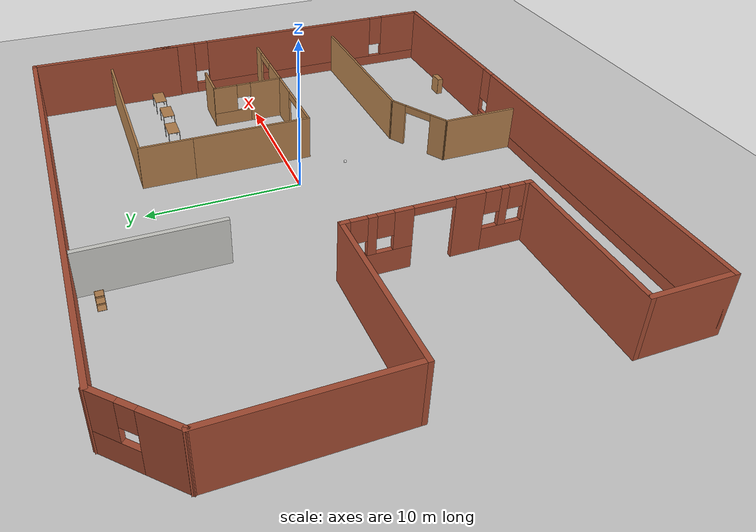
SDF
<sdf version="1.6">
 <world name="default">
  <plugin name="welcome_message" filename="libwelcome_message.so"/>
  <light name="sun" type="directional">
   <pose>0 0 10 0 -0 0</pose>
   <diffuse>0.8 0.8 0.8 1</diffuse>
   <specular>0.2 0.2 0.2 1</specular>
   <attenuation>
    <range>1000</range>
    <constant>0.9</constant>
    <linear>0.01</linear>
    <quadratic>0.001</quadratic>
   </attenuation>
   <direction>-0.5 0.1 -0.9</direction>
  </light>
  <model name="ground_plane">
   <static>1</static>
   <link name="link">
    <collision name="collision">
     <geometry><plane><normal>0 0 1</normal><size>100 100</size></plane></geometry>
     <surface>
      <contact><collide_bitmask>65535</collide_bitmask></contact>
      <friction><ode><mu>100</mu><mu2>50</mu2></ode></friction>
     </surface>
    </collision>
    <visual name="visual">
     <cast_shadows>0</cast_shadows>
     <geometry><plane><normal>0 0 1</normal><size>100 100</size></plane></geometry>
     <material>
      <script><uri>file://media/materials/scripts/gazebo.material</uri><name>Gazebo/Grey</name></script>
     </material>
    </visual>
   </link>
  </model>
  <gravity>0 0 -9.8</gravity>
  <magnetic_field>6e-06 2.3e-05 -4.2e-05</magnetic_field>
  <atmosphere type="adiabatic"/>
  <physics name="default_physics" default="0" type="ode">
   <max_step_size>0.001</max_step_size>
   <real_time_factor>1</real_time_factor>
   <real_time_update_rate>1000</real_time_update_rate>
  </physics>
  <scene><ambient>0.4 0.4 0.4 1</ambient><background>0.7 0.7 0.7 1</background><shadows>1</shadows></scene>
  <spherical_coordinates>
   <surface_model>EARTH_WGS84</surface_model>
   <latitude_deg>0</latitude_deg>
   <longitude_deg>0</longitude_deg>
   <elevation>0</elevation>
   <heading_deg>0</heading_deg>
  </spherical_coordinates>
  <model name="Building">
   <pose>-2.2862 -0.18474 0 0 -0 0</pose>
   <link name="Wall_12">
    <collision name="Wall_12_Collision">
     <geometry><box><size>10.4 0.3 4</size></box></geometry>
     <pose>0 0 2 0 -0 0</pose>
    </collision>
    <visual name="Wall_12_Visual">
     <pose>0 0 2 0 -0 0</pose>
     <geometry><box><size>10.4 0.3 4</size></box></geometry>
     <material>
      <script><uri>file://media/materials/scripts/gazebo.material</uri><name>Gazebo/Bricks</name></script>
      <ambient>0.333333 0 0 1</ambient>
     </material>
     <meta><layer>0</layer></meta>
    </visual>
    <pose>-12.3439 1.20443 0 0 -0 0</pose>
   </link>
   <link name="Wall_13">
    <pose>-7.29394 -4.47057 0 0 0 -1.5708</pose>
    <visual name="Wall_13_Visual_0">
     <pose>-5.51365 0 2 0 -0 0</pose>
     <geometry><box><size>0.62261 0.3 4</size></box></geometry>
     <material>
      <script><uri>file://media/materials/scripts/gazebo.material</uri><name>Gazebo/Bricks</name></script>
      <ambient>0.333333 0 0 1</ambient>
     </material>
     <meta><layer>0</layer></meta>
    </visual>
    <collision name="Wall_13_Collision_0">
     <geometry><box><size>0.62261 0.3 4</size></box></geometry>
     <pose>-5.51365 0 2 0 -0 0</pose>
    </collision>
    <visual name="Wall_13_Visual_1">
     <pose>1.88818 0 2 0 -0 0</pose>
     <geometry><box><size>1.83467 0.3 4</size></box></geometry>
     <material>
      <script><uri>file://media/materials/scripts/gazebo.material</uri><name>Gazebo/Bricks</name></script>
      <ambient>0.333333 0 0 1</ambient>
     </material>
     <meta><layer>0</layer></meta>
    </visual>
    <collision name="Wall_13_Collision_1">
     <geometry><box><size>1.83467 0.3 4</size></box></geometry>
     <pose>1.88818 0 2 0 -0 0</pose>
    </collision>
    <visual name="Wall_13_Visual_2">
     <pose>-3.36575 0 0.75 0 -0 0</pose>
     <geometry><box><size>3.6732 0.3 1.5</size></box></geometry>
     <material>
      <script><uri>file://media/materials/scripts/gazebo.material</uri><name>Gazebo/Bricks</name></script>
      <ambient>0.333333 0 0 1</ambient>
     </material>
     <meta><layer>0</layer></meta>
    </visual>
    <collision name="Wall_13_Collision_2">
     <geometry><box><size>3.6732 0.3 1.5</size></box></geometry>
     <pose>-3.36575 0 0.75 0 -0 0</pose>
    </collision>
    <visual name="Wall_13_Visual_3">
     <pose>4.31524 0 0.75 0 -0 0</pose>
     <geometry><box><size>3.01944 0.3 1.5</size></box></geometry>
     <material>
      <script><uri>file://media/materials/scripts/gazebo.material</uri><name>Gazebo/Bricks</name></script>
      <ambient>0.333333 0 0 1</ambient>
     </material>
     <meta><layer>0</layer></meta>
    </visual>
    <collision name="Wall_13_Collision_3">
     <geometry><box><size>3.01944 0.3 1.5</size></box></geometry>
     <pose>4.31524 0 0.75 0 -0 0</pose>
    </collision>
    <visual name="Wall_13_Visual_4">
     <pose>-3.93532 0 2.75 0 -0 0</pose>
     <geometry><box><size>0.534062 0.3 2.5</size></box></geometry>
     <material>
      <script><uri>file://media/materials/scripts/gazebo.material</uri><name>Gazebo/Bricks</name></script>
      <ambient>0.333333 0 0 1</ambient>
     </material>
     <meta><layer>0</layer></meta>
    </visual>
    <collision name="Wall_13_Collision_4">
     <geometry><box><size>0.534062 0.3 2.5</size></box></geometry>
     <pose>-3.93532 0 2.75 0 -0 0</pose>
    </collision>
    <visual name="Wall_13_Visual_5">
     <pose>-2.09872 0 2.75 0 -0 0</pose>
     <geometry><box><size>1.13914 0.3 2.5</size></box></geometry>
     <material>
      <script><uri>file://media/materials/scripts/gazebo.material</uri><name>Gazebo/Bricks</name></script>
      <ambient>0.333333 0 0 1</ambient>
     </material>
     <meta><layer>0</layer></meta>
    </visual>
    <collision name="Wall_13_Collision_5">
     <geometry><box><size>1.13914 0.3 2.5</size></box></geometry>
     <pose>-2.09872 0 2.75 0 -0 0</pose>
    </collision>
    <visual name="Wall_13_Visual_6">
     <pose>-2.09872 0 2.75 0 -0 0</pose>
     <geometry><box><size>1.13914 0.3 2.5</size></box></geometry>
     <material>
      <script><uri>file://media/materials/scripts/gazebo.material</uri><name>Gazebo/Bricks</name></script>
      <ambient>0.333333 0 0 1</ambient>
     </material>
     <meta><layer>0</layer></meta>
    </visual>
    <collision name="Wall_13_Collision_6">
     <geometry><box><size>1.13914 0.3 2.5</size></box></geometry>
     <pose>-2.09872 0 2.75 0 -0 0</pose>
    </collision>
    <visual name="Wall_13_Visual_7">
     <pose>4.05455 0 2.75 0 -0 0</pose>
     <geometry><box><size>0.49807 0.3 2.5</size></box></geometry>
     <material>
      <script><uri>file://media/materials/scripts/gazebo.material</uri><name>Gazebo/Bricks</name></script>
      <ambient>0.333333 0 0 1</ambient>
     </material>
     <meta><layer>0</layer></meta>
    </visual>
    <collision name="Wall_13_Collision_7">
     <geometry><box><size>0.49807 0.3 2.5</size></box></geometry>
     <pose>4.05455 0 2.75 0 -0 0</pose>
    </collision>
    <visual name="Wall_13_Visual_8">
     <pose>5.56427 0 2.75 0 -0 0</pose>
     <geometry><box><size>0.521372 0.3 2.5</size></box></geometry>
     <material>
      <script><uri>file://media/materials/scripts/gazebo.material</uri><name>Gazebo/Bricks</name></script>
      <ambient>0.333333 0 0 1</ambient>
     </material>
     <meta><layer>0</layer></meta>
    </visual>
    <collision name="Wall_13_Collision_8">
     <geometry><box><size>0.521372 0.3 2.5</size></box></geometry>
     <pose>5.56427 0 2.75 0 -0 0</pose>
    </collision>
    <visual name="Wall_13_Visual_9">
     <pose>-4.70235 0 3.25 0 -0 0</pose>
     <geometry><box><size>1 0.3 1.5</size></box></geometry>
     <material>
      <script><uri>file://media/materials/scripts/gazebo.material</uri><name>Gazebo/Bricks</name></script>
      <ambient>0.333333 0 0 1</ambient>
     </material>
     <meta><layer>0</layer></meta>
    </visual>
    <collision name="Wall_13_Collision_9">
     <geometry><box><size>1 0.3 1.5</size></box></geometry>
     <pose>-4.70235 0 3.25 0 -0 0</pose>
    </collision>
    <visual name="Wall_13_Visual_10">
     <pose>3.30552 0 3.25 0 -0 0</pose>
     <geometry><box><size>1 0.3 1.5</size></box></geometry>
     <material>
      <script><uri>file://media/materials/scripts/gazebo.material</uri><name>Gazebo/Bricks</name></script>
      <ambient>0.333333 0 0 1</ambient>
     </material>
     <meta><layer>0</layer></meta>
    </visual>
    <collision name="Wall_13_Collision_10">
     <geometry><box><size>1 0.3 1.5</size></box></geometry>
     <pose>3.30552 0 3.25 0 -0 0</pose>
    </collision>
    <visual name="Wall_13_Visual_11">
     <pose>-3.16829 0 3.25 0 -0 0</pose>
     <geometry><box><size>1 0.3 1.5</size></box></geometry>
     <material>
      <script><uri>file://media/materials/scripts/gazebo.material</uri><name>Gazebo/Bricks</name></script>
      <ambient>0.333333 0 0 1</ambient>
     </material>
     <meta><layer>0</layer></meta>
    </visual>
    <collision name="Wall_13_Collision_11">
     <geometry><box><size>1 0.3 1.5</size></box></geometry>
     <pose>-3.16829 0 3.25 0 -0 0</pose>
    </collision>
    <visual name="Wall_13_Visual_12">
     <pose>4.80359 0 3.25 0 -0 0</pose>
     <geometry><box><size>1 0.3 1.5</size></box></geometry>
     <material>
      <script><uri>file://media/materials/scripts/gazebo.material</uri><name>Gazebo/Bricks</name></script>
      <ambient>0.333333 0 0 1</ambient>
     </material>
     <meta><layer>0</layer></meta>
    </visual>
    <collision name="Wall_13_Collision_12">
     <geometry><box><size>1 0.3 1.5</size></box></geometry>
     <pose>4.80359 0 3.25 0 -0 0</pose>
    </collision>
    <visual name="Wall_13_Visual_13">
     <pose>-0.279151 0 3.75 0 -0 0</pose>
     <geometry><box><size>2.5 0.3 0.5</size></box></geometry>
     <material>
      <script><uri>file://media/materials/scripts/gazebo.material</uri><name>Gazebo/Bricks</name></script>
      <ambient>0.333333 0 0 1</ambient>
     </material>
     <meta><layer>0</layer></meta>
    </visual>
    <collision name="Wall_13_Collision_13">
     <geometry><box><size>2.5 0.3 0.5</size></box></geometry>
     <pose>-0.279151 0 3.75 0 -0 0</pose>
    </collision>
    <visual name="Wall_13_Visual_14">
     <pose>-0.279151 0 3.75 0 -0 0</pose>
     <geometry><box><size>2.5 0.3 0.5</size></box></geometry>
     <material>
      <script><uri>file://media/materials/scripts/gazebo.material</uri><name>Gazebo/Bricks</name></script>
      <ambient>0.333333 0 0 1</ambient>
     </material>
     <meta><layer>0</layer></meta>
    </visual>
    <collision name="Wall_13_Collision_14">
     <geometry><box><size>2.5 0.3 0.5</size></box></geometry>
     <pose>-0.279151 0 3.75 0 -0 0</pose>
    </collision>
   </link>
   <link name="Wall_14">
    <collision name="Wall_14_Collision">
     <geometry><box><size>10.4 0.3 4</size></box></geometry>
     <pose>0 0 2 0 -0 0</pose>
    </collision>
    <visual name="Wall_14_Visual">
     <pose>0 0 2 0 -0 0</pose>
     <geometry><box><size>10.4 0.3 4</size></box></geometry>
     <material>
      <script><uri>file://media/materials/scripts/gazebo.material</uri><name>Gazebo/Bricks</name></script>
      <ambient>0.333333 0 0 1</ambient>
     </material>
     <meta><layer>0</layer></meta>
    </visual>
    <pose>-12.3439 -10.1456 0 0 -0 3.14159</pose>
   </link>
   <link name="Wall_15">
    <collision name="Wall_15_Collision">
     <geometry><box><size>5.2 0.3 4</size></box></geometry>
     <pose>0 0 2 0 -0 0</pose>
    </collision>
    <visual name="Wall_15_Visual">
     <pose>0 0 2 0 -0 0</pose>
     <geometry><box><size>5.2 0.3 4</size></box></geometry>
     <material>
      <script><uri>file://media/materials/scripts/gazebo.material</uri><name>Gazebo/Bricks</name></script>
      <ambient>0.333333 0 0 1</ambient>
     </material>
     <meta><layer>0</layer></meta>
    </visual>
    <pose>-17.3939 -12.5956 0 0 0 -1.5708</pose>
   </link>
   <link name="Wall_17">
    <collision name="Wall_17_Collision">
     <geometry><box><size>8 0.15 3</size></box></geometry>
     <pose>0 0 1.5 0 -0 0</pose>
    </collision>
    <visual name="Wall_17_Visual">
     <pose>0 0 1.5 0 -0 0</pose>
     <geometry><box><size>8 0.15 3</size></box></geometry>
     <material>
      <script><uri>file://media/materials/scripts/gazebo.material</uri><name>Gazebo/Wood</name></script>
      <ambient>0.921569 0.807843 0.615686 1</ambient>
     </material>
     <meta><layer>0</layer></meta>
    </visual>
    <pose>5.41606 2.42343 0 0 0 -1.5708</pose>
   </link>
   <link name="Wall_18">
    <pose>11.4661 -1.50157 0 0 -0 0</pose>
    <visual name="Wall_18_Visual_0">
     <pose>-5.11618 0 1.5 0 -0 0</pose>
     <geometry><box><size>2.01764 0.15 3</size></box></geometry>
     <material>
      <script><uri>file://media/materials/scripts/gazebo.material</uri><name>Gazebo/Wood</name></script>
      <ambient>0.921569 0.807843 0.615686 1</ambient>
     </material>
     <meta><layer>0</layer></meta>
    </visual>
    <collision name="Wall_18_Collision_0">
     <geometry><box><size>2.01764 0.15 3</size></box></geometry>
     <pose>-5.11618 0 1.5 0 -0 0</pose>
    </collision>
    <visual name="Wall_18_Visual_1">
     <pose>0.290046 0 1.5 0 -0 0</pose>
     <geometry><box><size>4.79482 0.15 3</size></box></geometry>
     <material>
      <script><uri>file://media/materials/scripts/gazebo.material</uri><name>Gazebo/Wood</name></script>
      <ambient>0.921569 0.807843 0.615686 1</ambient>
     </material>
     <meta><layer>0</layer></meta>
    </visual>
    <collision name="Wall_18_Collision_1">
     <geometry><box><size>4.79482 0.15 3</size></box></geometry>
     <pose>0.290046 0 1.5 0 -0 0</pose>
    </collision>
    <visual name="Wall_18_Visual_2">
     <pose>5.40623 0 1.5 0 -0 0</pose>
     <geometry><box><size>1.43755 0.15 3</size></box></geometry>
     <material>
      <script><uri>file://media/materials/scripts/gazebo.material</uri><name>Gazebo/Wood</name></script>
      <ambient>0.921569 0.807843 0.615686 1</ambient>
     </material>
     <meta><layer>0</layer></meta>
    </visual>
    <collision name="Wall_18_Collision_2">
     <geometry><box><size>1.43755 0.15 3</size></box></geometry>
     <pose>5.40623 0 1.5 0 -0 0</pose>
    </collision>
    <visual name="Wall_18_Visual_3">
     <pose>-3.10736 0 2.75 0 -0 0</pose>
     <geometry><box><size>2 0.15 0.5</size></box></geometry>
     <material>
      <script><uri>file://media/materials/scripts/gazebo.material</uri><name>Gazebo/Wood</name></script>
      <ambient>0.921569 0.807843 0.615686 1</ambient>
     </material>
     <meta><layer>0</layer></meta>
    </visual>
    <collision name="Wall_18_Collision_3">
     <geometry><box><size>2 0.15 0.5</size></box></geometry>
     <pose>-3.10736 0 2.75 0 -0 0</pose>
    </collision>
    <visual name="Wall_18_Visual_4">
     <pose>3.68745 0 2.75 0 -0 0</pose>
     <geometry><box><size>2 0.15 0.5</size></box></geometry>
     <material>
      <script><uri>file://media/materials/scripts/gazebo.material</uri><name>Gazebo/Wood</name></script>
      <ambient>0.921569 0.807843 0.615686 1</ambient>
     </material>
     <meta><layer>0</layer></meta>
    </visual>
    <collision name="Wall_18_Collision_4">
     <geometry><box><size>2 0.15 0.5</size></box></geometry>
     <pose>3.68745 0 2.75 0 -0 0</pose>
    </collision>
   </link>
   <link name="Wall_2">
    <pose>17.4561 -4.37057 0 0 0 -1.5708</pose>
    <visual name="Wall_2_Visual_0">
     <pose>-9.30999 0 2 0 -0 0</pose>
     <geometry><box><size>3.03002 0.3 4</size></box></geometry>
     <material>
      <script><uri>file://media/materials/scripts/gazebo.material</uri><name>Gazebo/Bricks</name></script>
      <ambient>0.333333 0 0 1</ambient>
     </material>
     <meta><layer>0</layer></meta>
    </visual>
    <collision name="Wall_2_Collision_0">
     <geometry><box><size>3.03002 0.3 4</size></box></geometry>
     <pose>-9.30999 0 2 0 -0 0</pose>
    </collision>
    <visual name="Wall_2_Visual_1">
     <pose>1.51501 0 0.375 0 -0 0</pose>
     <geometry><box><size>18.62 0.3 0.75</size></box></geometry>
     <material>
      <script><uri>file://media/materials/scripts/gazebo.material</uri><name>Gazebo/Bricks</name></script>
      <ambient>0.333333 0 0 1</ambient>
     </material>
     <meta><layer>0</layer></meta>
    </visual>
    <collision name="Wall_2_Collision_1">
     <geometry><box><size>18.62 0.3 0.75</size></box></geometry>
     <pose>1.51501 0 0.375 0 -0 0</pose>
    </collision>
    <visual name="Wall_2_Visual_2">
     <pose>-0.098897 0 2.375 0 -0 0</pose>
     <geometry><box><size>13.3922 0.3 3.25</size></box></geometry>
     <material>
      <script><uri>file://media/materials/scripts/gazebo.material</uri><name>Gazebo/Bricks</name></script>
      <ambient>0.333333 0 0 1</ambient>
     </material>
     <meta><layer>0</layer></meta>
    </visual>
    <collision name="Wall_2_Collision_2">
     <geometry><box><size>13.3922 0.3 3.25</size></box></geometry>
     <pose>-0.098897 0 2.375 0 -0 0</pose>
    </collision>
    <visual name="Wall_2_Visual_3">
     <pose>9.2111 0 2.375 0 -0 0</pose>
     <geometry><box><size>3.22781 0.3 3.25</size></box></geometry>
     <material>
      <script><uri>file://media/materials/scripts/gazebo.material</uri><name>Gazebo/Bricks</name></script>
      <ambient>0.333333 0 0 1</ambient>
     </material>
     <meta><layer>0</layer></meta>
    </visual>
    <collision name="Wall_2_Collision_3">
     <geometry><box><size>3.22781 0.3 3.25</size></box></geometry>
     <pose>9.2111 0 2.375 0 -0 0</pose>
    </collision>
    <visual name="Wall_2_Visual_4">
     <pose>-7.29498 0 2.875 0 -0 0</pose>
     <geometry><box><size>1 0.3 2.25</size></box></geometry>
     <material>
      <script><uri>file://media/materials/scripts/gazebo.material</uri><name>Gazebo/Bricks</name></script>
      <ambient>0.333333 0 0 1</ambient>
     </material>
     <meta><layer>0</layer></meta>
    </visual>
    <collision name="Wall_2_Collision_4">
     <geometry><box><size>1 0.3 2.25</size></box></geometry>
     <pose>-7.29498 0 2.875 0 -0 0</pose>
    </collision>
    <visual name="Wall_2_Visual_5">
     <pose>7.09719 0 2.875 0 -0 0</pose>
     <geometry><box><size>1 0.3 2.25</size></box></geometry>
     <material>
      <script><uri>file://media/materials/scripts/gazebo.material</uri><name>Gazebo/Bricks</name></script>
      <ambient>0.333333 0 0 1</ambient>
     </material>
     <meta><layer>0</layer></meta>
    </visual>
    <collision name="Wall_2_Collision_5">
     <geometry><box><size>1 0.3 2.25</size></box></geometry>
     <pose>7.09719 0 2.875 0 -0 0</pose>
    </collision>
   </link>
   <link name="Wall_23">
    <collision name="Wall_23_Collision">
     <geometry><box><size>5.25 0.15 3</size></box></geometry>
     <pose>0 0 1.5 0 -0 0</pose>
    </collision>
    <visual name="Wall_23_Visual">
     <pose>0 0 1.5 0 -0 0</pose>
     <geometry><box><size>5.25 0.15 3</size></box></geometry>
     <material>
      <script><uri>file://media/materials/scripts/gazebo.material</uri><name>Gazebo/Wood</name></script>
      <ambient>0.333333 0.333333 1 1</ambient>
     </material>
     <meta><layer>0</layer></meta>
    </visual>
    <pose>1.93806 -12.4486 0 0 -0 1.5708</pose>
   </link>
   <link name="Wall_24">
    <pose>3.82206 -8.81107 0 0 -0 0.523508</pose>
    <visual name="Wall_24_Visual_0">
     <pose>-1.59211 0 1.5 0 -0 0</pose>
     <geometry><box><size>1.31578 0.15 3</size></box></geometry>
     <material>
      <script><uri>file://media/materials/scripts/gazebo.material</uri><name>Gazebo/Wood</name></script>
      <ambient>0.333333 0.333333 1 1</ambient>
     </material>
     <meta><layer>0</layer></meta>
    </visual>
    <collision name="Wall_24_Collision_0">
     <geometry><box><size>1.31578 0.15 3</size></box></geometry>
     <pose>-1.59211 0 1.5 0 -0 0</pose>
    </collision>
    <visual name="Wall_24_Visual_1">
     <pose>1.65789 0 1.5 0 -0 0</pose>
     <geometry><box><size>1.18422 0.15 3</size></box></geometry>
     <material>
      <script><uri>file://media/materials/scripts/gazebo.material</uri><name>Gazebo/Wood</name></script>
      <ambient>0.333333 0.333333 1 1</ambient>
     </material>
     <meta><layer>0</layer></meta>
    </visual>
    <collision name="Wall_24_Collision_1">
     <geometry><box><size>1.18422 0.15 3</size></box></geometry>
     <pose>1.65789 0 1.5 0 -0 0</pose>
    </collision>
    <visual name="Wall_24_Visual_2">
     <pose>0.065781 0 2.75 0 -0 0</pose>
     <geometry><box><size>2 0.15 0.5</size></box></geometry>
     <material>
      <script><uri>file://media/materials/scripts/gazebo.material</uri><name>Gazebo/Wood</name></script>
      <ambient>0.333333 0.333333 1 1</ambient>
     </material>
     <meta><layer>0</layer></meta>
    </visual>
    <collision name="Wall_24_Collision_2">
     <geometry><box><size>2 0.15 0.5</size></box></geometry>
     <pose>0.065781 0 2.75 0 -0 0</pose>
    </collision>
   </link>
   <link name="Wall_25">
    <collision name="Wall_25_Collision">
     <geometry><box><size>11.75 0.15 3</size></box></geometry>
     <pose>0 0 1.5 0 -0 0</pose>
    </collision>
    <visual name="Wall_25_Visual">
     <pose>0 0 1.5 0 -0 0</pose>
     <geometry><box><size>11.75 0.15 3</size></box></geometry>
     <material>
      <script><uri>file://media/materials/scripts/gazebo.material</uri><name>Gazebo/Wood</name></script>
      <ambient>0.333333 0.333333 1 1</ambient>
     </material>
     <meta><layer>0</layer></meta>
    </visual>
    <pose>11.5061 -7.72357 0 0 -0 0</pose>
   </link>
   <link name="Wall_27">
    <pose>11.6311 0.898434 0 0 -0 1.5708</pose>
    <visual name="Wall_27_Visual_0">
     <pose>-1.33266 0 1.5 0 -0 0</pose>
     <geometry><box><size>2.33468 0.15 3</size></box></geometry>
     <material>
      <script><uri>file://media/materials/scripts/gazebo.material</uri><name>Gazebo/Wood</name></script>
      <ambient>0.921569 0.807843 0.615686 1</ambient>
     </material>
     <meta><layer>0</layer></meta>
    </visual>
    <collision name="Wall_27_Collision_0">
     <geometry><box><size>2.33468 0.15 3</size></box></geometry>
     <pose>-1.33266 0 1.5 0 -0 0</pose>
    </collision>
    <visual name="Wall_27_Visual_1">
     <pose>1.16734 0 0.5 0 -0 0</pose>
     <geometry><box><size>2.66532 0.15 1</size></box></geometry>
     <material>
      <script><uri>file://media/materials/scripts/gazebo.material</uri><name>Gazebo/Wood</name></script>
      <ambient>0.921569 0.807843 0.615686 1</ambient>
     </material>
     <meta><layer>0</layer></meta>
    </visual>
    <collision name="Wall_27_Collision_1">
     <geometry><box><size>2.66532 0.15 1</size></box></geometry>
     <pose>1.16734 0 0.5 0 -0 0</pose>
    </collision>
    <visual name="Wall_27_Visual_2">
     <pose>1.66734 0 2 0 -0 0</pose>
     <geometry><box><size>1.66532 0.15 2</size></box></geometry>
     <material>
      <script><uri>file://media/materials/scripts/gazebo.material</uri><name>Gazebo/Wood</name></script>
      <ambient>0.921569 0.807843 0.615686 1</ambient>
     </material>
     <meta><layer>0</layer></meta>
    </visual>
    <collision name="Wall_27_Collision_2">
     <geometry><box><size>1.66532 0.15 2</size></box></geometry>
     <pose>1.66734 0 2 0 -0 0</pose>
    </collision>
    <visual name="Wall_27_Visual_3">
     <pose>0.334681 0 2.5 0 -0 0</pose>
     <geometry><box><size>1 0.15 1</size></box></geometry>
     <material>
      <script><uri>file://media/materials/scripts/gazebo.material</uri><name>Gazebo/Wood</name></script>
      <ambient>0.921569 0.807843 0.615686 1</ambient>
     </material>
     <meta><layer>0</layer></meta>
    </visual>
    <collision name="Wall_27_Collision_3">
     <geometry><box><size>1 0.15 1</size></box></geometry>
     <pose>0.334681 0 2.5 0 -0 0</pose>
    </collision>
   </link>
   <link name="Wall_28">
    <collision name="Wall_28_Collision">
     <geometry><box><size>2.75 0.15 3</size></box></geometry>
     <pose>0 0 1.5 0 -0 0</pose>
    </collision>
    <visual name="Wall_28_Visual">
     <pose>0 0 1.5 0 -0 0</pose>
     <geometry><box><size>2.75 0.15 3</size></box></geometry>
     <material>
      <script><uri>file://media/materials/scripts/gazebo.material</uri><name>Gazebo/Wood</name></script>
      <ambient>0.921569 0.807843 0.615686 1</ambient>
     </material>
     <meta><layer>0</layer></meta>
    </visual>
    <pose>12.9311 3.32343 0 0 -0 0</pose>
   </link>
   <link name="Wall_3">
    <pose>0.031065 -15.0456 0 0 -0 3.14159</pose>
    <visual name="Wall_3_Visual_0">
     <pose>-11.837 0 2 0 -0 0</pose>
     <geometry><box><size>11.4759 0.3 4</size></box></geometry>
     <material>
      <script><uri>file://media/materials/scripts/gazebo.material</uri><name>Gazebo/Bricks</name></script>
      <ambient>0.333333 0 0 1</ambient>
     </material>
     <meta><layer>0</layer></meta>
    </visual>
    <collision name="Wall_3_Collision_0">
     <geometry><box><size>11.4759 0.3 4</size></box></geometry>
     <pose>-11.837 0 2 0 -0 0</pose>
    </collision>
    <visual name="Wall_3_Visual_1">
     <pose>5.73797 0 0.375 0 -0 0</pose>
     <geometry><box><size>23.674 0.3 0.75</size></box></geometry>
     <material>
      <script><uri>file://media/materials/scripts/gazebo.material</uri><name>Gazebo/Bricks</name></script>
      <ambient>0.333333 0 0 1</ambient>
     </material>
     <meta><layer>0</layer></meta>
    </visual>
    <collision name="Wall_3_Collision_1">
     <geometry><box><size>23.674 0.3 0.75</size></box></geometry>
     <pose>5.73797 0 0.375 0 -0 0</pose>
    </collision>
    <visual name="Wall_3_Visual_2">
     <pose>6.23797 0 2.375 0 -0 0</pose>
     <geometry><box><size>22.674 0.3 3.25</size></box></geometry>
     <material>
      <script><uri>file://media/materials/scripts/gazebo.material</uri><name>Gazebo/Bricks</name></script>
      <ambient>0.333333 0 0 1</ambient>
     </material>
     <meta><layer>0</layer></meta>
    </visual>
    <collision name="Wall_3_Collision_2">
     <geometry><box><size>22.674 0.3 3.25</size></box></geometry>
     <pose>6.23797 0 2.375 0 -0 0</pose>
    </collision>
    <visual name="Wall_3_Visual_3">
     <pose>-5.59903 0 2.875 0 -0 0</pose>
     <geometry><box><size>1 0.3 2.25</size></box></geometry>
     <material>
      <script><uri>file://media/materials/scripts/gazebo.material</uri><name>Gazebo/Bricks</name></script>
      <ambient>0.333333 0 0 1</ambient>
     </material>
     <meta><layer>0</layer></meta>
    </visual>
    <collision name="Wall_3_Collision_3">
     <geometry><box><size>1 0.3 2.25</size></box></geometry>
     <pose>-5.59903 0 2.875 0 -0 0</pose>
    </collision>
   </link>
   <link name="Wall_37">
    <collision name="Wall_37_Collision">
     <geometry><box><size>10.65 0.3 4</size></box></geometry>
     <pose>0 0 2 0 -0 0</pose>
    </collision>
    <visual name="Wall_37_Visual">
     <pose>0 0 2 0 -0 0</pose>
     <geometry><box><size>10.65 0.3 4</size></box></geometry>
     <material>
      <script><uri>file://media/materials/scripts/gazebo.material</uri><name>Gazebo/Bricks</name></script>
      <ambient>0.333333 0 0 1</ambient>
     </material>
     <meta><layer>0</layer></meta>
    </visual>
    <pose>-17.3939 6.37943 0 0 -0 1.5708</pose>
   </link>
   <link name="Wall_38">
    <pose>-15.6794 13.2689 0 0 -0 0.785398</pose>
    <visual name="Wall_38_Visual_0">
     <pose>-1.35264 0 2 0 -0 0</pose>
     <geometry><box><size>2.44405 0.3 4</size></box></geometry>
     <material>
      <script><uri>file://media/materials/scripts/gazebo.material</uri><name>Gazebo/Bricks</name></script>
      <ambient>0.333333 0 0 1</ambient>
     </material>
     <meta><layer>0</layer></meta>
    </visual>
    <collision name="Wall_38_Collision_0">
     <geometry><box><size>2.44405 0.3 4</size></box></geometry>
     <pose>-1.35264 0 2 0 -0 0</pose>
    </collision>
    <visual name="Wall_38_Visual_1">
     <pose>1.22202 0 0.75 0 -0 0</pose>
     <geometry><box><size>2.70529 0.3 1.5</size></box></geometry>
     <material>
      <script><uri>file://media/materials/scripts/gazebo.material</uri><name>Gazebo/Bricks</name></script>
      <ambient>0.333333 0 0 1</ambient>
     </material>
     <meta><layer>0</layer></meta>
    </visual>
    <collision name="Wall_38_Collision_1">
     <geometry><box><size>2.70529 0.3 1.5</size></box></geometry>
     <pose>1.22202 0 0.75 0 -0 0</pose>
    </collision>
    <visual name="Wall_38_Visual_2">
     <pose>1.72202 0 2.75 0 -0 0</pose>
     <geometry><box><size>1.70529 0.3 2.5</size></box></geometry>
     <material>
      <script><uri>file://media/materials/scripts/gazebo.material</uri><name>Gazebo/Bricks</name></script>
      <ambient>0.333333 0 0 1</ambient>
     </material>
     <meta><layer>0</layer></meta>
    </visual>
    <collision name="Wall_38_Collision_2">
     <geometry><box><size>1.70529 0.3 2.5</size></box></geometry>
     <pose>1.72202 0 2.75 0 -0 0</pose>
    </collision>
    <visual name="Wall_38_Visual_3">
     <pose>0.369382 0 3.25 0 -0 0</pose>
     <geometry><box><size>1 0.3 1.5</size></box></geometry>
     <material>
      <script><uri>file://media/materials/scripts/gazebo.material</uri><name>Gazebo/Bricks</name></script>
      <ambient>0.333333 0 0 1</ambient>
     </material>
     <meta><layer>0</layer></meta>
    </visual>
    <collision name="Wall_38_Collision_3">
     <geometry><box><size>1 0.3 1.5</size></box></geometry>
     <pose>0.369382 0 3.25 0 -0 0</pose>
    </collision>
   </link>
   <link name="Wall_41">
    <collision name="Wall_41_Collision">
     <geometry><box><size>31.6505 0.3 4</size></box></geometry>
     <pose>0 0 2 0 -0 0</pose>
    </collision>
    <visual name="Wall_41_Visual">
     <pose>0 0 2 0 -0 0</pose>
     <geometry><box><size>31.6505 0.3 4</size></box></geometry>
     <material>
      <script><uri>file://media/materials/scripts/gazebo.material</uri><name>Gazebo/Bricks</name></script>
      <ambient>0.333333 0 0 1</ambient>
     </material>
     <meta><layer>0</layer></meta>
    </visual>
    <pose>1.71006 14.9834 0 0 -0 0</pose>
   </link>
   <link name="Wall_42">
    <collision name="Wall_42_Collision">
     <geometry><box><size>10.3995 0.3 4</size></box></geometry>
     <pose>0 0 2 0 -0 0</pose>
    </collision>
    <visual name="Wall_42_Visual">
     <pose>0 0 2 0 -0 0</pose>
     <geometry><box><size>10.3995 0.3 4</size></box></geometry>
     <material>
      <script><uri>file://media/materials/scripts/gazebo.material</uri><name>Gazebo/Bricks</name></script>
      <ambient>0.333333 0 0 1</ambient>
     </material>
     <meta><layer>0</layer></meta>
    </visual>
    <pose>17.3851 9.93343 0 0 0 -1.5708</pose>
   </link>
   <link name="Wall_46">
    <collision name="Wall_46_Collision">
     <geometry><box><size>8.90044 0.3 3</size></box></geometry>
     <pose>0 0 1.5 0 -0 0</pose>
    </collision>
    <visual name="Wall_46_Visual">
     <pose>0 0 1.5 0 -0 0</pose>
     <geometry><box><size>8.90044 0.3 3</size></box></geometry>
     <material>
      <script><uri>file://media/materials/scripts/gazebo.material</uri><name>Gazebo/CeilingTiled</name></script>
      <ambient>0 0.333333 1 1</ambient>
     </material>
     <meta><layer>0</layer></meta>
    </visual>
    <pose>-3.59694 10.7194 0 0 0 -1.5708</pose>
   </link>
   <link name="Wall_48">
    <collision name="Wall_48_Collision">
     <geometry><box><size>3.5 0.15 3</size></box></geometry>
     <pose>0 0 1.5 0 -0 0</pose>
    </collision>
    <visual name="Wall_48_Visual">
     <pose>0 0 1.5 0 -0 0</pose>
     <geometry><box><size>3.5 0.15 3</size></box></geometry>
     <material>
      <script><uri>file://media/materials/scripts/gazebo.material</uri><name>Gazebo/Wood</name></script>
      <ambient>0.921569 0.807843 0.615686 1</ambient>
     </material>
     <meta><layer>0</layer></meta>
    </visual>
    <pose>5.41606 8.02343 0 0 -0 1.5708</pose>
   </link>
   <link name="Wall_49">
    <collision name="Wall_49_Collision">
     <geometry><box><size>12 0.15 3</size></box></geometry>
     <pose>0 0 1.5 0 -0 0</pose>
    </collision>
    <visual name="Wall_49_Visual">
     <pose>0 0 1.5 0 -0 0</pose>
     <geometry><box><size>12 0.15 3</size></box></geometry>
     <material>
      <script><uri>file://media/materials/scripts/gazebo.material</uri><name>Gazebo/Wood</name></script>
      <ambient>0.921569 0.807843 0.615686 1</ambient>
     </material>
     <meta><layer>0</layer></meta>
    </visual>
    <pose>11.3411 9.69843 0 0 -0 0</pose>
   </link>
   <link name="Wall_8">
    <collision name="Wall_8_Collision">
     <geometry><box><size>0.15 0.15 2.5</size></box></geometry>
     <pose>0 0 1.25 0 -0 0</pose>
    </collision>
    <visual name="Wall_8_Visual">
     <pose>0 0 1.25 0 -0 0</pose>
     <geometry><box><size>0.15 0.15 2.5</size></box></geometry>
     <material>
      <script><uri>file://media/materials/scripts/gazebo.material</uri><name>Gazebo/Grey</name></script>
      <ambient>1 1 1 1</ambient>
     </material>
     <meta><layer>0</layer></meta>
    </visual>
    <pose>-17.3939 6.30443 0 0 -0 0</pose>
   </link>
   <static>1</static>
  </model>
  <model name="bookshelf">
   <static>1</static>
   <link name="link">
    <inertial><mass>1</mass></inertial>
    <collision name="back">
     <pose>0 0.005 0.6 0 -0 0</pose>
     <geometry><box><size>0.9 0.01 1.2</size></box></geometry>
    </collision>
    <visual name="visual1">
     <pose>0 0.005 0.6 0 -0 0</pose>
     <geometry><box><size>0.9 0.01 1.2</size></box></geometry>
     <material>
      <script><uri>file://media/materials/scripts/gazebo.material</uri><name>Gazebo/Wood</name></script>
     </material>
    </visual>
    <collision name="left_side">
     <pose>0.45 -0.195 0.6 0 -0 0</pose>
     <geometry><box><size>0.02 0.4 1.2</size></box></geometry>
    </collision>
    <visual name="visual2">
     <pose>0.45 -0.195 0.6 0 -0 0</pose>
     <geometry><box><size>0.02 0.4 1.2</size></box></geometry>
     <material>
      <script><uri>file://media/materials/scripts/gazebo.material</uri><name>Gazebo/Wood</name></script>
     </material>
    </visual>
    <collision name="right_side">
     <pose>-0.45 -0.195 0.6 0 -0 0</pose>
     <geometry><box><size>0.02 0.4 1.2</size></box></geometry>
    </collision>
    <visual name="visual3">
     <pose>-0.45 -0.195 0.6 0 -0 0</pose>
     <geometry><box><size>0.02 0.4 1.2</size></box></geometry>
     <material>
      <script><uri>file://media/materials/scripts/gazebo.material</uri><name>Gazebo/Wood</name></script>
     </material>
    </visual>
    <collision name="bottom">
     <pose>0 -0.195 0.03 0 -0 0</pose>
     <geometry><box><size>0.88 0.4 0.06</size></box></geometry>
    </collision>
    <visual name="visual4">
     <pose>0 -0.195 0.03 0 -0 0</pose>
     <geometry><box><size>0.88 0.4 0.06</size></box></geometry>
     <material>
      <script><uri>file://media/materials/scripts/gazebo.material</uri><name>Gazebo/Wood</name></script>
     </material>
    </visual>
    <collision name="top">
     <pose>0 -0.195 1.19 0 -0 0</pose>
     <geometry><box><size>0.88 0.4 0.02</size></box></geometry>
    </collision>
    <visual name="visual5">
     <pose>0 -0.195 1.19 0 -0 0</pose>
     <geometry><box><size>0.88 0.4 0.02</size></box></geometry>
     <material>
      <script><uri>file://media/materials/scripts/gazebo.material</uri><name>Gazebo/Wood</name></script>
     </material>
    </visual>
    <collision name="low_shelf">
     <pose>0 -0.195 0.43 0 -0 0</pose>
     <geometry><box><size>0.88 0.4 0.02</size></box></geometry>
    </collision>
    <visual name="visual6">
     <pose>0 -0.195 0.43 0 -0 0</pose>
     <geometry><box><size>0.88 0.4 0.02</size></box></geometry>
     <material>
      <script><uri>file://media/materials/scripts/gazebo.material</uri><name>Gazebo/Wood</name></script>
     </material>
    </visual>
    <collision name="high_shelf">
     <pose>0 -0.195 0.8 0 -0 0</pose>
     <geometry><box><size>0.88 0.4 0.02</size></box></geometry>
    </collision>
    <visual name="visual7">
     <pose>0 -0.195 0.8 0 -0 0</pose>
     <geometry><box><size>0.88 0.4 0.02</size></box></geometry>
     <material>
      <script><uri>file://media/materials/scripts/gazebo.material</uri><name>Gazebo/Wood</name></script>
     </material>
    </visual>
   </link>
   <pose>8.78209 -14.1013 0 0 -0 0</pose>
  </model>
  <model name="table">
   <static>1</static>
   <link name="link">
    <collision name="surface">
     <pose>0 0 1 0 -0 0</pose>
     <geometry><box><size>1.5 0.8 0.03</size></box></geometry>
     <surface><friction><ode><mu>0.6</mu><mu2>0.6</mu2></ode></friction></surface>
    </collision>
    <visual name="visual1">
     <pose>0 0 1 0 -0 0</pose>
     <geometry><box><size>1.5 0.8 0.03</size></box></geometry>
     <material>
      <script><uri>file://media/materials/scripts/gazebo.material</uri><name>Gazebo/Wood</name></script>
     </material>
    </visual>
    <collision name="front_left_leg">
     <pose>0.68 0.38 0.5 0 -0 0</pose>
     <geometry><cylinder><radius>0.02</radius><length>1</length></cylinder></geometry>
    </collision>
    <visual name="front_left_leg">
     <pose>0.68 0.38 0.5 0 -0 0</pose>
     <geometry><cylinder><radius>0.02</radius><length>1</length></cylinder></geometry>
     <material>
      <script><uri>file://media/materials/scripts/gazebo.material</uri><name>Gazebo/Grey</name></script>
     </material>
    </visual>
    <collision name="front_right_leg">
     <pose>0.68 -0.38 0.5 0 -0 0</pose>
     <geometry><cylinder><radius>0.02</radius><length>1</length></cylinder></geometry>
    </collision>
    <visual name="front_right_leg">
     <pose>0.68 -0.38 0.5 0 -0 0</pose>
     <geometry><cylinder><radius>0.02</radius><length>1</length></cylinder></geometry>
     <material>
      <script><uri>file://media/materials/scripts/gazebo.material</uri><name>Gazebo/Grey</name></script>
     </material>
    </visual>
    <collision name="back_right_leg">
     <pose>-0.68 -0.38 0.5 0 -0 0</pose>
     <geometry><cylinder><radius>0.02</radius><length>1</length></cylinder></geometry>
    </collision>
    <visual name="back_right_leg">
     <pose>-0.68 -0.38 0.5 0 -0 0</pose>
     <geometry><cylinder><radius>0.02</radius><length>1</length></cylinder></geometry>
     <material>
      <script><uri>file://media/materials/scripts/gazebo.material</uri><name>Gazebo/Grey</name></script>
     </material>
    </visual>
    <collision name="back_left_leg">
     <pose>-0.68 0.38 0.5 0 -0 0</pose>
     <geometry><cylinder><radius>0.02</radius><length>1</length></cylinder></geometry>
    </collision>
    <visual name="back_left_leg">
     <pose>-0.68 0.38 0.5 0 -0 0</pose>
     <geometry><cylinder><radius>0.02</radius><length>1</length></cylinder></geometry>
     <material>
      <script><uri>file://media/materials/scripts/gazebo.material</uri><name>Gazebo/Grey</name></script>
     </material>
    </visual>
   </link>
   <pose>13.1546 6.54254 0 0 -0 0</pose>
  </model>
  <model name="table_clone">
   <static>1</static>
   <link name="link">
    <collision name="surface">
     <pose>0 0 1 0 -0 0</pose>
     <geometry><box><size>1.5 0.8 0.03</size></box></geometry>
     <surface><friction><ode><mu>0.6</mu><mu2>0.6</mu2></ode></friction></surface>
    </collision>
    <visual name="visual1">
     <pose>0 0 1 0 -0 0</pose>
     <geometry><box><size>1.5 0.8 0.03</size></box></geometry>
     <material>
      <script><uri>file://media/materials/scripts/gazebo.material</uri><name>Gazebo/Wood</name></script>
     </material>
    </visual>
    <collision name="front_left_leg">
     <pose>0.68 0.38 0.5 0 -0 0</pose>
     <geometry><cylinder><radius>0.02</radius><length>1</length></cylinder></geometry>
    </collision>
    <visual name="front_left_leg">
     <pose>0.68 0.38 0.5 0 -0 0</pose>
     <geometry><cylinder><radius>0.02</radius><length>1</length></cylinder></geometry>
     <material>
      <script><uri>file://media/materials/scripts/gazebo.material</uri><name>Gazebo/Grey</name></script>
     </material>
    </visual>
    <collision name="front_right_leg">
     <pose>0.68 -0.38 0.5 0 -0 0</pose>
     <geometry><cylinder><radius>0.02</radius><length>1</length></cylinder></geometry>
    </collision>
    <visual name="front_right_leg">
     <pose>0.68 -0.38 0.5 0 -0 0</pose>
     <geometry><cylinder><radius>0.02</radius><length>1</length></cylinder></geometry>
     <material>
      <script><uri>file://media/materials/scripts/gazebo.material</uri><name>Gazebo/Grey</name></script>
     </material>
    </visual>
    <collision name="back_right_leg">
     <pose>-0.68 -0.38 0.5 0 -0 0</pose>
     <geometry><cylinder><radius>0.02</radius><length>1</length></cylinder></geometry>
    </collision>
    <visual name="back_right_leg">
     <pose>-0.68 -0.38 0.5 0 -0 0</pose>
     <geometry><cylinder><radius>0.02</radius><length>1</length></cylinder></geometry>
     <material>
      <script><uri>file://media/materials/scripts/gazebo.material</uri><name>Gazebo/Grey</name></script>
     </material>
    </visual>
    <collision name="back_left_leg">
     <pose>-0.68 0.38 0.5 0 -0 0</pose>
     <geometry><cylinder><radius>0.02</radius><length>1</length></cylinder></geometry>
    </collision>
    <visual name="back_left_leg">
     <pose>-0.68 0.38 0.5 0 -0 0</pose>
     <geometry><cylinder><radius>0.02</radius><length>1</length></cylinder></geometry>
     <material>
      <script><uri>file://media/materials/scripts/gazebo.material</uri><name>Gazebo/Grey</name></script>
     </material>
    </visual>
   </link>
   <pose>10.7894 6.43555 0 0 -0 0</pose>
  </model>
  <model name="table_clone_0">
   <static>1</static>
   <link name="link">
    <collision name="surface">
     <pose>0 0 1 0 -0 0</pose>
     <geometry><box><size>1.5 0.8 0.03</size></box></geometry>
     <surface><friction><ode><mu>0.6</mu><mu2>0.6</mu2></ode></friction></surface>
    </collision>
    <visual name="visual1">
     <pose>0 0 1 0 -0 0</pose>
     <geometry><box><size>1.5 0.8 0.03</size></box></geometry>
     <material>
      <script><uri>file://media/materials/scripts/gazebo.material</uri><name>Gazebo/Wood</name></script>
     </material>
    </visual>
    <collision name="front_left_leg">
     <pose>0.68 0.38 0.5 0 -0 0</pose>
     <geometry><cylinder><radius>0.02</radius><length>1</length></cylinder></geometry>
    </collision>
    <visual name="front_left_leg">
     <pose>0.68 0.38 0.5 0 -0 0</pose>
     <geometry><cylinder><radius>0.02</radius><length>1</length></cylinder></geometry>
     <material>
      <script><uri>file://media/materials/scripts/gazebo.material</uri><name>Gazebo/Grey</name></script>
     </material>
    </visual>
    <collision name="front_right_leg">
     <pose>0.68 -0.38 0.5 0 -0 0</pose>
     <geometry><cylinder><radius>0.02</radius><length>1</length></cylinder></geometry>
    </collision>
    <visual name="front_right_leg">
     <pose>0.68 -0.38 0.5 0 -0 0</pose>
     <geometry><cylinder><radius>0.02</radius><length>1</length></cylinder></geometry>
     <material>
      <script><uri>file://media/materials/scripts/gazebo.material</uri><name>Gazebo/Grey</name></script>
     </material>
    </visual>
    <collision name="back_right_leg">
     <pose>-0.68 -0.38 0.5 0 -0 0</pose>
     <geometry><cylinder><radius>0.02</radius><length>1</length></cylinder></geometry>
    </collision>
    <visual name="back_right_leg">
     <pose>-0.68 -0.38 0.5 0 -0 0</pose>
     <geometry><cylinder><radius>0.02</radius><length>1</length></cylinder></geometry>
     <material>
      <script><uri>file://media/materials/scripts/gazebo.material</uri><name>Gazebo/Grey</name></script>
     </material>
    </visual>
    <collision name="back_left_leg">
     <pose>-0.68 0.38 0.5 0 -0 0</pose>
     <geometry><cylinder><radius>0.02</radius><length>1</length></cylinder></geometry>
    </collision>
    <visual name="back_left_leg">
     <pose>-0.68 0.38 0.5 0 -0 0</pose>
     <geometry><cylinder><radius>0.02</radius><length>1</length></cylinder></geometry>
     <material>
      <script><uri>file://media/materials/scripts/gazebo.material</uri><name>Gazebo/Grey</name></script>
     </material>
    </visual>
   </link>
   <pose>8.34665 6.56076 0 0 -0 0</pose>
  </model>
  <model name="table_clone_1">
   <static>1</static>
   <link name="link">
    <collision name="surface">
     <pose>0 0 1 0 -0 0</pose>
     <geometry><box><size>1.5 0.8 0.03</size></box></geometry>
     <surface><friction><ode><mu>0.6</mu><mu2>0.6</mu2></ode></friction></surface>
    </collision>
    <visual name="visual1">
     <pose>0 0 1 0 -0 0</pose>
     <geometry><box><size>1.5 0.8 0.03</size></box></geometry>
     <material>
      <script><uri>file://media/materials/scripts/gazebo.material</uri><name>Gazebo/Wood</name></script>
     </material>
    </visual>
    <collision name="front_left_leg">
     <pose>0.68 0.38 0.5 0 -0 0</pose>
     <geometry><cylinder><radius>0.02</radius><length>1</length></cylinder></geometry>
    </collision>
    <visual name="front_left_leg">
     <pose>0.68 0.38 0.5 0 -0 0</pose>
     <geometry><cylinder><radius>0.02</radius><length>1</length></cylinder></geometry>
     <material>
      <script><uri>file://media/materials/scripts/gazebo.material</uri><name>Gazebo/Grey</name></script>
     </material>
    </visual>
    <collision name="front_right_leg">
     <pose>0.68 -0.38 0.5 0 -0 0</pose>
     <geometry><cylinder><radius>0.02</radius><length>1</length></cylinder></geometry>
    </collision>
    <visual name="front_right_leg">
     <pose>0.68 -0.38 0.5 0 -0 0</pose>
     <geometry><cylinder><radius>0.02</radius><length>1</length></cylinder></geometry>
     <material>
      <script><uri>file://media/materials/scripts/gazebo.material</uri><name>Gazebo/Grey</name></script>
     </material>
    </visual>
    <collision name="back_right_leg">
     <pose>-0.68 -0.38 0.5 0 -0 0</pose>
     <geometry><cylinder><radius>0.02</radius><length>1</length></cylinder></geometry>
    </collision>
    <visual name="back_right_leg">
     <pose>-0.68 -0.38 0.5 0 -0 0</pose>
     <geometry><cylinder><radius>0.02</radius><length>1</length></cylinder></geometry>
     <material>
      <script><uri>file://media/materials/scripts/gazebo.material</uri><name>Gazebo/Grey</name></script>
     </material>
    </visual>
    <collision name="back_left_leg">
     <pose>-0.68 0.38 0.5 0 -0 0</pose>
     <geometry><cylinder><radius>0.02</radius><length>1</length></cylinder></geometry>
    </collision>
    <visual name="back_left_leg">
     <pose>-0.68 0.38 0.5 0 -0 0</pose>
     <geometry><cylinder><radius>0.02</radius><length>1</length></cylinder></geometry>
     <material>
      <script><uri>file://media/materials/scripts/gazebo.material</uri><name>Gazebo/Grey</name></script>
     </material>
    </visual>
   </link>
   <pose>-4.08357 13.2884 0 0 -0 0</pose>
  </model>
  <model name="cabinet">
   <static>1</static>
   <link name="cabinet_bottom_plate">
    <inertial>
     <pose>0 0 -1 0 -0 0</pose>
     <inertia><ixx>2.05</ixx><ixy>0</ixy><ixz>0</ixz><iyy>2.05</iyy><iyz>0</iyz><izz>2.05</izz></inertia>
     <mass>25</mass>
    </inertial>
    <collision name="cabinet_bottom_plate_geom">
     <pose>0 0 0.01 0 -0 0</pose>
     <geometry><box><size>0.45 0.45 0.02</size></box></geometry>
    </collision>
    <visual name="cabinet_bottom_plate_geom_visual">
     <pose>0 0 0.01 0 -0 0</pose>
     <geometry><box><size>0.45 0.45 0.02</size></box></geometry>
     <material>
      <script><uri>file://media/materials/scripts/gazebo.material</uri><name>Gazebo/Wood</name></script>
     </material>
    </visual>
    <collision name="cabinet_bottom_plate_geom_cabinet_back_plate">
     <pose>0.235 0 0.51 0 -0 0</pose>
     <geometry><box><size>0.02 0.45 1.02</size></box></geometry>
    </collision>
    <visual name="cabinet_bottom_plate_geom_cabinet_back_plate_visual">
     <pose>0.235 0 0.51 0 -0 0</pose>
     <geometry><box><size>0.02 0.45 1.02</size></box></geometry>
     <material>
      <script><uri>file://media/materials/scripts/gazebo.material</uri><name>Gazebo/Wood</name></script>
     </material>
    </visual>
    <collision name="cabinet_bottom_plate_geom_cabinet_left_plate">
     <pose>0 0.235 0.51 0 -0 0</pose>
     <geometry><box><size>0.45 0.02 1.02</size></box></geometry>
    </collision>
    <visual name="cabinet_bottom_plate_geom_cabinet_left_plate_visual">
     <pose>0 0.235 0.51 0 -0 0</pose>
     <geometry><box><size>0.45 0.02 1.02</size></box></geometry>
     <material>
      <script><uri>file://media/materials/scripts/gazebo.material</uri><name>Gazebo/Wood</name></script>
     </material>
    </visual>
    <collision name="cabinet_bottom_plate_geom_cabinet_middle_plate">
     <pose>0 0 0.51 0 -0 0</pose>
     <geometry><box><size>0.45 0.45 0.02</size></box></geometry>
    </collision>
    <visual name="cabinet_bottom_plate_geom_cabinet_middle_plate_visual">
     <pose>0 0 0.51 0 -0 0</pose>
     <geometry><box><size>0.45 0.45 0.02</size></box></geometry>
     <material>
      <script><uri>file://media/materials/scripts/gazebo.material</uri><name>Gazebo/Wood</name></script>
     </material>
    </visual>
    <collision name="cabinet_bottom_plate_geom_cabinet_right_plate">
     <pose>0 -0.235 0.51 0 -0 0</pose>
     <geometry><box><size>0.45 0.02 1.02</size></box></geometry>
    </collision>
    <visual name="cabinet_bottom_plate_geom_cabinet_right_plate_visual">
     <pose>0 -0.235 0.51 0 -0 0</pose>
     <geometry><box><size>0.45 0.02 1.02</size></box></geometry>
     <material>
      <script><uri>file://media/materials/scripts/gazebo.material</uri><name>Gazebo/Wood</name></script>
     </material>
    </visual>
    <collision name="cabinet_bottom_plate_geom_cabinet_top_plate">
     <pose>0 0 1.01 0 -0 0</pose>
     <geometry><box><size>0.45 0.45 0.02</size></box></geometry>
    </collision>
    <visual name="cabinet_bottom_plate_geom_cabinet_top_plate_visual">
     <pose>0 0 1.01 0 -0 0</pose>
     <geometry><box><size>0.45 0.45 0.02</size></box></geometry>
     <material>
      <script><uri>file://media/materials/scripts/gazebo.material</uri><name>Gazebo/Wood</name></script>
     </material>
    </visual>
   </link>
   <pose>-7.27996 13.5028 0 0 -0 0</pose>
  </model>
  <model name="my_ball">
   <link name="link">
    <inertial>
     <mass>1</mass>
     <inertia><ixx>0.1</ixx><ixy>0</ixy><ixz>0</ixz><iyy>0.1</iyy><iyz>0</iyz><izz>0.1</izz></inertia>
    </inertial>
    <visual name="visual">
     <geometry><sphere><radius>0.1</radius></sphere></geometry>
     <material>
      <script><name>Gazebo/White</name><uri>file://media/materials/scripts/gazebo.material</uri></script>
      <ambient>1 1 1 1</ambient>
      <diffuse>1 1 1 1</diffuse>
      <specular>1 1 1 1</specular>
      <emissive>1 1 1 1</emissive>
      <shader type="vertex"><normal_map>__default__</normal_map></shader>
     </material>
    </visual>
    <collision name="collision">
     <geometry><sphere><radius>0.1</radius></sphere></geometry>
     <surface>
      <friction>
       <ode><mu>1</mu><mu2>1</mu2><fdir1>0 0 0</fdir1><slip1>0</slip1><slip2>0</slip2></ode>
       <torsional>
        <coefficient>1</coefficient>
        <patch_radius>0</patch_radius>
        <surface_radius>0</surface_radius>
        <use_patch_radius>1</use_patch_radius>
        <ode><slip>0</slip></ode>
       </torsional>
      </friction>
      <bounce><restitution_coefficient>0</restitution_coefficient><threshold>1e+06</threshold></bounce>
      <contact>
       <collide_without_contact>0</collide_without_contact>
       <collide_without_contact_bitmask>1</collide_without_contact_bitmask>
       <collide_bitmask>1</collide_bitmask>
       <ode>
        <soft_cfm>0</soft_cfm>
        <soft_erp>0.2</soft_erp>
        <kp>1e+13</kp>
        <kd>1</kd>
        <max_vel>0.01</max_vel>
        <min_depth>0</min_depth>
       </ode>
       <bullet>
        <split_impulse>1</split_impulse>
        <split_impulse_penetration_threshold>-0.01</split_impulse_penetration_threshold>
        <soft_cfm>0</soft_cfm>
        <soft_erp>0.2</soft_erp>
        <kp>1e+13</kp>
        <kd>1</kd>
       </bullet>
      </contact>
     </surface>
    </collision>
   </link>
   <static>0</static>
   <pose>1.5481 -3.71303 0.1 0 -0 0</pose>
  </model>
 </world>
</sdf>
